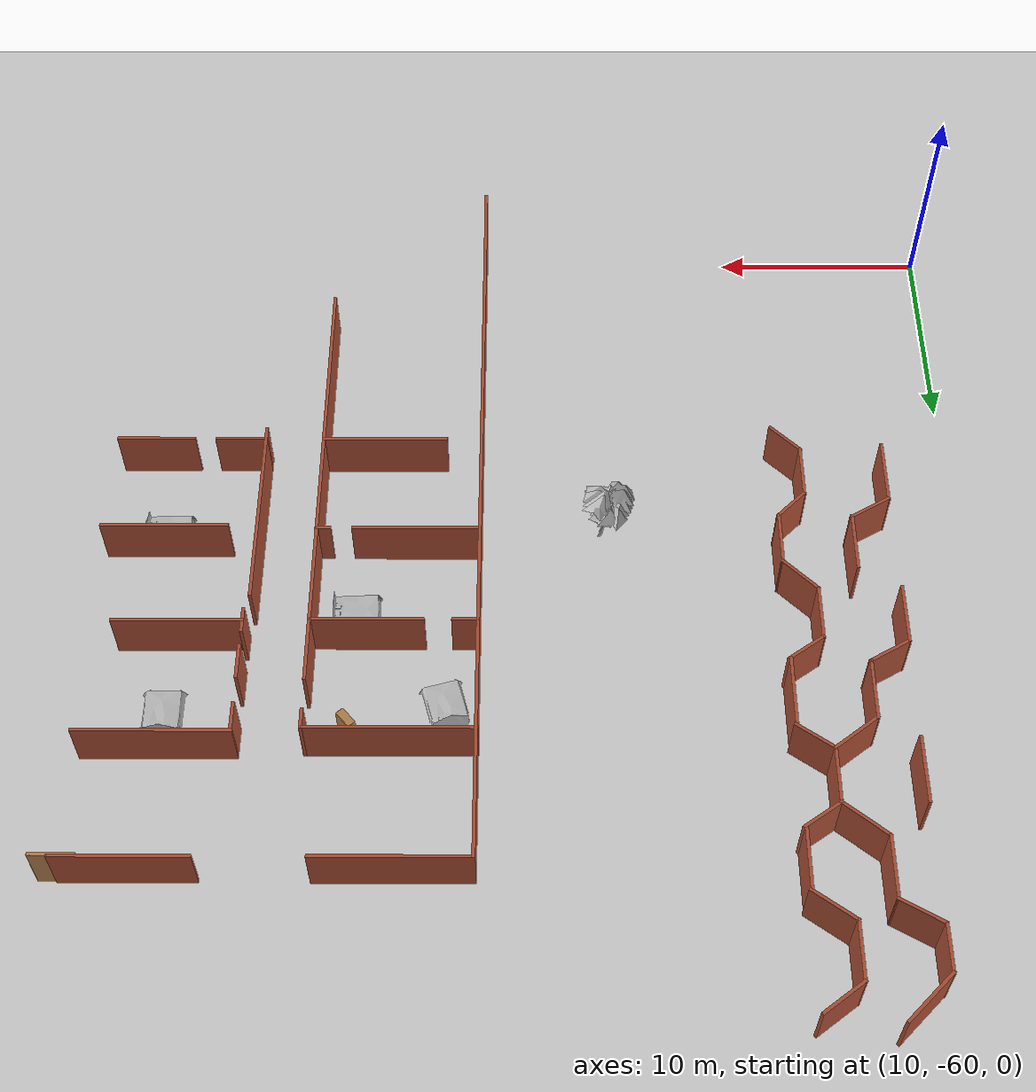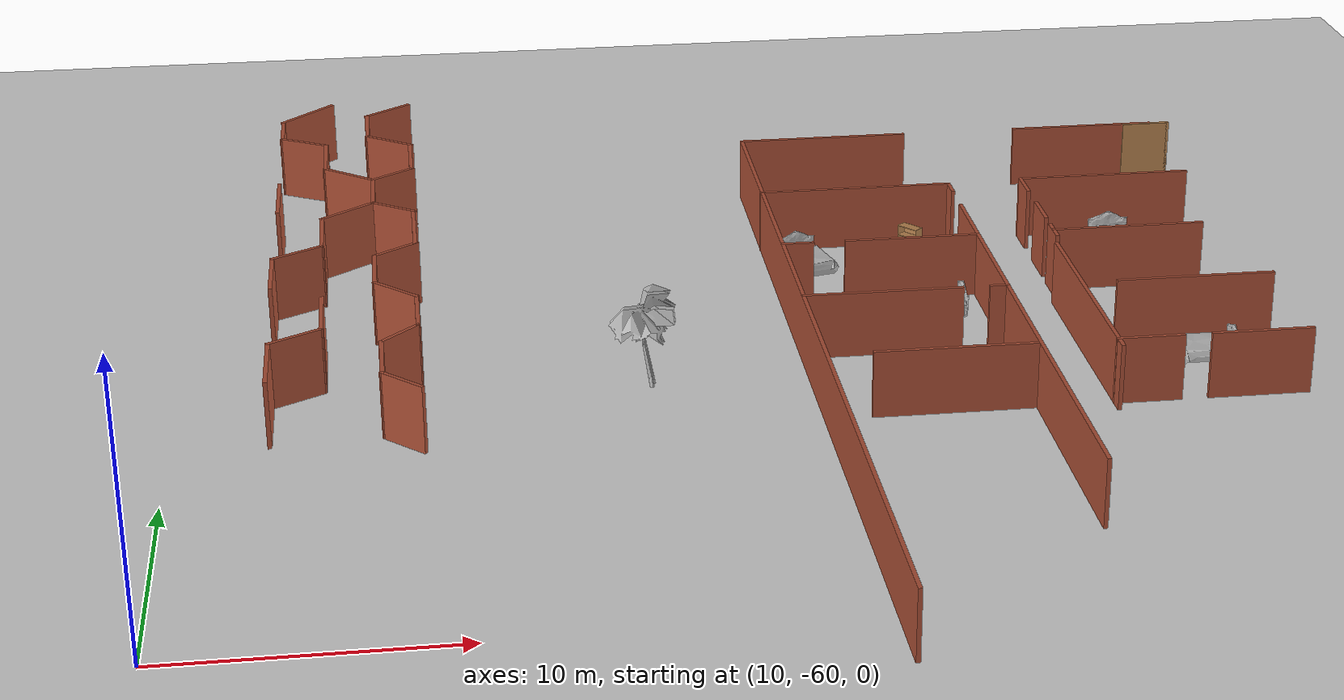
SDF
<sdf version="1.6">
 <world name="default">
  <model name="maze_rect_3">
   <pose>4e-06 -9.9e-05 0 0 -0 1.57001</pose>
   <link name="Wall_10">
    <collision name="Wall_10_Collision">
     <geometry><box><size>2.75 0.15 2.5</size></box></geometry>
     <pose>0 0 1.25 0 -0 0</pose>
    </collision>
    <visual name="Wall_10_Visual">
     <pose>0 0 1.25 0 -0 0</pose>
     <geometry><box><size>2.75 0.15 2.5</size></box></geometry>
     <material>
      <script><uri>file://media/materials/scripts/gazebo.material</uri><name>Gazebo/Bricks</name></script>
      <ambient>1 1 1 1</ambient>
     </material>
     <meta><layer>0</layer></meta>
    </visual>
    <pose>-20.3577 -17.0553 0 0 -0 3.14159</pose>
   </link>
   <link name="Wall_11">
    <collision name="Wall_11_Collision">
     <geometry><box><size>2.37821 0.15 2.5</size></box></geometry>
     <pose>0 0 1.25 0 -0 0</pose>
    </collision>
    <visual name="Wall_11_Visual">
     <pose>0 0 1.25 0 -0 0</pose>
     <geometry><box><size>2.37821 0.15 2.5</size></box></geometry>
     <material>
      <script><uri>file://media/materials/scripts/gazebo.material</uri><name>Gazebo/Bricks</name></script>
      <ambient>1 1 1 1</ambient>
     </material>
     <meta><layer>0</layer></meta>
    </visual>
    <pose>-22.3117 -17.9572 0 0 -0 -2.19825</pose>
   </link>
   <link name="Wall_12">
    <collision name="Wall_12_Collision">
     <geometry><box><size>3 0.15 2.5</size></box></geometry>
     <pose>0 0 1.25 0 -0 0</pose>
    </collision>
    <visual name="Wall_12_Visual">
     <pose>0 0 1.25 0 -0 0</pose>
     <geometry><box><size>3 0.15 2.5</size></box></geometry>
     <material>
      <script><uri>file://media/materials/scripts/gazebo.material</uri><name>Gazebo/Bricks</name></script>
      <ambient>1 1 1 1</ambient>
     </material>
     <meta><layer>0</layer></meta>
    </visual>
    <pose>-24.3908 -18.8069 0 0 -0 3.14159</pose>
   </link>
   <link name="Wall_13">
    <collision name="Wall_13_Collision">
     <geometry><box><size>2.13172 0.15 2.5</size></box></geometry>
     <pose>0 0 1.25 0 -0 0</pose>
    </collision>
    <visual name="Wall_13_Visual">
     <pose>0 0 1.25 0 -0 0</pose>
     <geometry><box><size>2.13172 0.15 2.5</size></box></geometry>
     <material>
      <script><uri>file://media/materials/scripts/gazebo.material</uri><name>Gazebo/Bricks</name></script>
      <ambient>1 1 1 1</ambient>
     </material>
     <meta><layer>0</layer></meta>
    </visual>
    <pose>-26.3815 -18.0456 0 0 -0 2.1784</pose>
   </link>
   <link name="Wall_14">
    <collision name="Wall_14_Collision">
     <geometry><box><size>2.75 0.15 2.5</size></box></geometry>
     <pose>0 0 1.25 0 -0 0</pose>
    </collision>
    <visual name="Wall_14_Visual">
     <pose>0 0 1.25 0 -0 0</pose>
     <geometry><box><size>2.75 0.15 2.5</size></box></geometry>
     <material>
      <script><uri>file://media/materials/scripts/gazebo.material</uri><name>Gazebo/Bricks</name></script>
      <ambient>1 1 1 1</ambient>
     </material>
     <meta><layer>0</layer></meta>
    </visual>
    <pose>-28.2472 -17.2321 0 0 -0 3.14159</pose>
   </link>
   <link name="Wall_15">
    <collision name="Wall_15_Collision">
     <geometry><box><size>2.11036 0.15 2.5</size></box></geometry>
     <pose>0 0 1.25 0 -0 0</pose>
    </collision>
    <visual name="Wall_15_Visual">
     <pose>0 0 1.25 0 -0 0</pose>
     <geometry><box><size>2.11036 0.15 2.5</size></box></geometry>
     <material>
      <script><uri>file://media/materials/scripts/gazebo.material</uri><name>Gazebo/Bricks</name></script>
      <ambient>1 1 1 1</ambient>
     </material>
     <meta><layer>0</layer></meta>
    </visual>
    <pose>-30.1129 -18.0325 0 0 -0 -2.186</pose>
   </link>
   <link name="Wall_16">
    <collision name="Wall_16_Collision">
     <geometry><box><size>3.5 0.15 2.5</size></box></geometry>
     <pose>0 0 1.25 0 -0 0</pose>
    </collision>
    <visual name="Wall_16_Visual">
     <pose>0 0 1.25 0 -0 0</pose>
     <geometry><box><size>3.5 0.15 2.5</size></box></geometry>
     <material>
      <script><uri>file://media/materials/scripts/gazebo.material</uri><name>Gazebo/Bricks</name></script>
      <ambient>1 1 1 1</ambient>
     </material>
     <meta><layer>0</layer></meta>
    </visual>
    <pose>-32.3535 -18.7808 0 0 -0 3.14159</pose>
   </link>
   <link name="Wall_17">
    <collision name="Wall_17_Collision">
     <geometry><box><size>2.11036 0.15 2.5</size></box></geometry>
     <pose>0 0 1.25 0 -0 0</pose>
    </collision>
    <visual name="Wall_17_Visual">
     <pose>0 0 1.25 0 -0 0</pose>
     <geometry><box><size>2.11036 0.15 2.5</size></box></geometry>
     <material>
      <script><uri>file://media/materials/scripts/gazebo.material</uri><name>Gazebo/Bricks</name></script>
      <ambient>1 1 1 1</ambient>
     </material>
     <meta><layer>0</layer></meta>
    </visual>
    <pose>-34.5942 -18.0325 0 0 -0 2.186</pose>
   </link>
   <link name="Wall_18">
    <collision name="Wall_18_Collision">
     <geometry><box><size>2.75 0.15 2.5</size></box></geometry>
     <pose>0 0 1.25 0 -0 0</pose>
    </collision>
    <visual name="Wall_18_Visual">
     <pose>0 0 1.25 0 -0 0</pose>
     <geometry><box><size>2.75 0.15 2.5</size></box></geometry>
     <material>
      <script><uri>file://media/materials/scripts/gazebo.material</uri><name>Gazebo/Bricks</name></script>
      <ambient>1 1 1 1</ambient>
     </material>
     <meta><layer>0</layer></meta>
    </visual>
    <pose>-36.4599 -17.2321 0 0 -0 3.14159</pose>
   </link>
   <link name="Wall_19">
    <collision name="Wall_19_Collision">
     <geometry><box><size>2.25 0.15 2.5</size></box></geometry>
     <pose>0 0 1.25 0 -0 0</pose>
    </collision>
    <visual name="Wall_19_Visual">
     <pose>0 0 1.25 0 -0 0</pose>
     <geometry><box><size>2.25 0.15 2.5</size></box></geometry>
     <material>
      <script><uri>file://media/materials/scripts/gazebo.material</uri><name>Gazebo/Bricks</name></script>
      <ambient>1 1 1 1</ambient>
     </material>
     <meta><layer>0</layer></meta>
    </visual>
    <pose>-38.5024 -17.9745 0 0 -0 -2.35619</pose>
   </link>
   <link name="Wall_20">
    <collision name="Wall_20_Collision">
     <geometry><box><size>2.75 0.15 2.5</size></box></geometry>
     <pose>0 0 1.25 0 -0 0</pose>
    </collision>
    <visual name="Wall_20_Visual">
     <pose>0 0 1.25 0 -0 0</pose>
     <geometry><box><size>2.75 0.15 2.5</size></box></geometry>
     <material>
      <script><uri>file://media/materials/scripts/gazebo.material</uri><name>Gazebo/Bricks</name></script>
      <ambient>1 1 1 1</ambient>
     </material>
     <meta><layer>0</layer></meta>
    </visual>
    <pose>-40.5448 -18.717 0 0 -0 3.14159</pose>
   </link>
   <link name="Wall_21">
    <collision name="Wall_21_Collision">
     <geometry><box><size>2 0.15 2.5</size></box></geometry>
     <pose>0 0 1.25 0 -0 0</pose>
    </collision>
    <visual name="Wall_21_Visual">
     <pose>0 0 1.25 0 -0 0</pose>
     <geometry><box><size>2 0.15 2.5</size></box></geometry>
     <material>
      <script><uri>file://media/materials/scripts/gazebo.material</uri><name>Gazebo/Bricks</name></script>
      <ambient>1 1 1 1</ambient>
     </material>
     <meta><layer>0</layer></meta>
    </visual>
    <pose>-42.4989 -18.0629 0 0 -0 2.35619</pose>
   </link>
   <link name="Wall_22">
    <collision name="Wall_22_Collision">
     <geometry><box><size>2.75 0.15 2.5</size></box></geometry>
     <pose>0 0 1.25 0 -0 0</pose>
    </collision>
    <visual name="Wall_22_Visual">
     <pose>0 0 1.25 0 -0 0</pose>
     <geometry><box><size>2.75 0.15 2.5</size></box></geometry>
     <material>
      <script><uri>file://media/materials/scripts/gazebo.material</uri><name>Gazebo/Bricks</name></script>
      <ambient>1 1 1 1</ambient>
     </material>
     <meta><layer>0</layer></meta>
    </visual>
    <pose>-44.453 -17.4088 0 0 -0 3.14159</pose>
   </link>
   <link name="Wall_23">
    <collision name="Wall_23_Collision">
     <geometry><box><size>2 0.15 2.5</size></box></geometry>
     <pose>0 0 1.25 0 -0 0</pose>
    </collision>
    <visual name="Wall_23_Visual">
     <pose>0 0 1.25 0 -0 0</pose>
     <geometry><box><size>2 0.15 2.5</size></box></geometry>
     <material>
      <script><uri>file://media/materials/scripts/gazebo.material</uri><name>Gazebo/Bricks</name></script>
      <ambient>1 1 1 1</ambient>
     </material>
     <meta><layer>0</layer></meta>
    </visual>
    <pose>-46.4071 -18.0629 0 0 -0 -2.35619</pose>
   </link>
   <link name="Wall_523">
    <collision name="Wall_523_Collision">
     <geometry><box><size>3 0.15 2.5</size></box></geometry>
     <pose>0 0 1.25 0 -0 0</pose>
    </collision>
    <visual name="Wall_523_Visual">
     <pose>0 0 1.25 0 -0 0</pose>
     <geometry><box><size>3 0.15 2.5</size></box></geometry>
     <material>
      <script><uri>file://media/materials/scripts/gazebo.material</uri><name>Gazebo/Bricks</name></script>
      <ambient>1 1 1 1</ambient>
     </material>
     <meta><layer>0</layer></meta>
    </visual>
    <pose>-18.4126 -14.5248 0 0 -0 2.35619</pose>
   </link>
   <link name="Wall_524">
    <collision name="Wall_524_Collision">
     <geometry><box><size>2.25 0.15 2.5</size></box></geometry>
     <pose>0 0 1.25 0 -0 0</pose>
    </collision>
    <visual name="Wall_524_Visual">
     <pose>0 0 1.25 0 -0 0</pose>
     <geometry><box><size>2.25 0.15 2.5</size></box></geometry>
     <material>
      <script><uri>file://media/materials/scripts/gazebo.material</uri><name>Gazebo/Bricks</name></script>
      <ambient>1 1 1 1</ambient>
     </material>
     <meta><layer>0</layer></meta>
    </visual>
    <pose>-20.4702 -13.5171 0 0 -0 3.14159</pose>
   </link>
   <link name="Wall_525">
    <collision name="Wall_525_Collision">
     <geometry><box><size>2.25 0.15 2.5</size></box></geometry>
     <pose>0 0 1.25 0 -0 0</pose>
    </collision>
    <visual name="Wall_525_Visual">
     <pose>0 0 1.25 0 -0 0</pose>
     <geometry><box><size>2.25 0.15 2.5</size></box></geometry>
     <material>
      <script><uri>file://media/materials/scripts/gazebo.material</uri><name>Gazebo/Bricks</name></script>
      <ambient>1 1 1 1</ambient>
     </material>
     <meta><layer>0</layer></meta>
    </visual>
    <pose>-22.0452 -14.4265 0 0 -0 -2.0944</pose>
   </link>
   <link name="Wall_526">
    <collision name="Wall_526_Collision">
     <geometry><box><size>3 0.15 2.5</size></box></geometry>
     <pose>0 0 1.25 0 -0 0</pose>
    </collision>
    <visual name="Wall_526_Visual">
     <pose>0 0 1.25 0 -0 0</pose>
     <geometry><box><size>3 0.15 2.5</size></box></geometry>
     <material>
      <script><uri>file://media/materials/scripts/gazebo.material</uri><name>Gazebo/Bricks</name></script>
      <ambient>1 1 1 1</ambient>
     </material>
     <meta><layer>0</layer></meta>
    </visual>
    <pose>-23.9952 -15.3358 0 0 -0 3.14159</pose>
   </link>
   <link name="Wall_527">
    <collision name="Wall_527_Collision">
     <geometry><box><size>2.58466 0.15 2.5</size></box></geometry>
     <pose>0 0 1.25 0 -0 0</pose>
    </collision>
    <visual name="Wall_527_Visual">
     <pose>0 0 1.25 0 -0 0</pose>
     <geometry><box><size>2.58466 0.15 2.5</size></box></geometry>
     <material>
      <script><uri>file://media/materials/scripts/gazebo.material</uri><name>Gazebo/Bricks</name></script>
      <ambient>1 1 1 1</ambient>
     </material>
     <meta><layer>0</layer></meta>
    </visual>
    <pose>-26.1837 -16.2839 0 0 -0 -2.24872</pose>
   </link>
   <link name="Wall_531">
    <collision name="Wall_531_Collision">
     <geometry><box><size>3.25 0.15 2.5</size></box></geometry>
     <pose>0 0 1.25 0 -0 0</pose>
    </collision>
    <visual name="Wall_531_Visual">
     <pose>0 0 1.25 0 -0 0</pose>
     <geometry><box><size>3.25 0.15 2.5</size></box></geometry>
     <material>
      <script><uri>file://media/materials/scripts/gazebo.material</uri><name>Gazebo/Bricks</name></script>
      <ambient>1 1 1 1</ambient>
     </material>
     <meta><layer>0</layer></meta>
    </visual>
    <pose>-28.5265 -13.521 0 0 -0 0</pose>
   </link>
   <link name="Wall_553">
    <collision name="Wall_553_Collision">
     <geometry><box><size>2.25 0.15 2.5</size></box></geometry>
     <pose>0 0 1.25 0 -0 0</pose>
    </collision>
    <visual name="Wall_553_Visual">
     <pose>0 0 1.25 0 -0 0</pose>
     <geometry><box><size>2.25 0.15 2.5</size></box></geometry>
     <material>
      <script><uri>file://media/materials/scripts/gazebo.material</uri><name>Gazebo/Bricks</name></script>
      <ambient>1 1 1 1</ambient>
     </material>
     <meta><layer>0</layer></meta>
    </visual>
    <pose>-34.4368 -14.3454 0 0 -0 -1.0472</pose>
   </link>
   <link name="Wall_554">
    <collision name="Wall_554_Collision">
     <geometry><box><size>3 0.15 2.5</size></box></geometry>
     <pose>0 0 1.25 0 -0 0</pose>
    </collision>
    <visual name="Wall_554_Visual">
     <pose>0 0 1.25 0 -0 0</pose>
     <geometry><box><size>3 0.15 2.5</size></box></geometry>
     <material>
      <script><uri>file://media/materials/scripts/gazebo.material</uri><name>Gazebo/Bricks</name></script>
      <ambient>1 1 1 1</ambient>
     </material>
     <meta><layer>0</layer></meta>
    </visual>
    <pose>-32.4868 -15.2547 0 0 -0 0</pose>
   </link>
   <link name="Wall_555">
    <collision name="Wall_555_Collision">
     <geometry><box><size>2.64082 0.15 2.5</size></box></geometry>
     <pose>0 0 1.25 0 -0 0</pose>
    </collision>
    <visual name="Wall_555_Visual">
     <pose>0 0 1.25 0 -0 0</pose>
     <geometry><box><size>2.64082 0.15 2.5</size></box></geometry>
     <material>
      <script><uri>file://media/materials/scripts/gazebo.material</uri><name>Gazebo/Bricks</name></script>
      <ambient>1 1 1 1</ambient>
     </material>
     <meta><layer>0</layer></meta>
    </visual>
    <pose>-30.3045 -16.2434 0 0 -0 -0.917144</pose>
   </link>
   <link name="Wall_566">
    <collision name="Wall_566_Collision">
     <geometry><box><size>3 0.15 2.5</size></box></geometry>
     <pose>0 0 1.25 0 -0 0</pose>
    </collision>
    <visual name="Wall_566_Visual">
     <pose>0 0 1.25 0 -0 0</pose>
     <geometry><box><size>3 0.15 2.5</size></box></geometry>
     <material>
      <script><uri>file://media/materials/scripts/gazebo.material</uri><name>Gazebo/Bricks</name></script>
      <ambient>1 1 1 1</ambient>
     </material>
     <meta><layer>0</layer></meta>
    </visual>
    <pose>-36.3868 -13.436 0 0 -0 0</pose>
   </link>
   <link name="Wall_586">
    <collision name="Wall_586_Collision">
     <geometry><box><size>3.31727 0.15 2.5</size></box></geometry>
     <pose>0 0 1.25 0 -0 0</pose>
    </collision>
    <visual name="Wall_586_Visual">
     <pose>0 0 1.25 0 -0 0</pose>
     <geometry><box><size>3.31727 0.15 2.5</size></box></geometry>
     <material>
      <script><uri>file://media/materials/scripts/gazebo.material</uri><name>Gazebo/Bricks</name></script>
      <ambient>1 1 1 1</ambient>
     </material>
     <meta><layer>0</layer></meta>
    </visual>
    <pose>-44.4117 -13.4893 0 0 -0 3.14104</pose>
   </link>
   <link name="Wall_592">
    <collision name="Wall_592_Collision">
     <geometry><box><size>3 0.15 2.5</size></box></geometry>
     <pose>0 0 1.25 0 -0 0</pose>
    </collision>
    <visual name="Wall_592_Visual">
     <pose>0 0 1.25 0 -0 0</pose>
     <geometry><box><size>3 0.15 2.5</size></box></geometry>
     <material>
      <script><uri>file://media/materials/scripts/gazebo.material</uri><name>Gazebo/Bricks</name></script>
      <ambient>1 1 1 1</ambient>
     </material>
     <meta><layer>0</layer></meta>
    </visual>
    <pose>-40.3531 -15.3088 0 0 -0 3.14159</pose>
   </link>
   <link name="Wall_593">
    <collision name="Wall_593_Collision">
     <geometry><box><size>2.25 0.15 2.5</size></box></geometry>
     <pose>0 0 1.25 0 -0 0</pose>
    </collision>
    <visual name="Wall_593_Visual">
     <pose>0 0 1.25 0 -0 0</pose>
     <geometry><box><size>2.25 0.15 2.5</size></box></geometry>
     <material>
      <script><uri>file://media/materials/scripts/gazebo.material</uri><name>Gazebo/Bricks</name></script>
      <ambient>1 1 1 1</ambient>
     </material>
     <meta><layer>0</layer></meta>
    </visual>
    <pose>-42.3031 -14.3995 0 0 -0 2.0944</pose>
   </link>
   <link name="Wall_9">
    <collision name="Wall_9_Collision">
     <geometry><box><size>2.34649 0.15 2.5</size></box></geometry>
     <pose>0 0 1.25 0 -0 0</pose>
    </collision>
    <visual name="Wall_9_Visual">
     <pose>0 0 1.25 0 -0 0</pose>
     <geometry><box><size>2.34649 0.15 2.5</size></box></geometry>
     <material>
      <script><uri>file://media/materials/scripts/gazebo.material</uri><name>Gazebo/Bricks</name></script>
      <ambient>1 1 1 1</ambient>
     </material>
     <meta><layer>0</layer></meta>
    </visual>
    <pose>-18.4011 -17.9356 0 0 -0 2.21162</pose>
   </link>
   <static>1</static>
  </model>
  <model name="map_palace_v2_model_1_0">
   <pose>-3.1e-05 -55 0 0 -0 3.14</pose>
   <link name="Wall_101">
    <collision name="Wall_101_Collision">
     <geometry><box><size>1.25 0.15 2.5</size></box></geometry>
     <pose>0 0 1.25 0 -0 0</pose>
    </collision>
    <visual name="Wall_101_Visual">
     <pose>0 0 1.25 0 -0 0</pose>
     <geometry><box><size>1.25 0.15 2.5</size></box></geometry>
     <material>
      <script><uri>file://media/materials/scripts/gazebo.material</uri><name>Gazebo/Bricks</name></script>
      <ambient>1 1 1 1</ambient>
     </material>
     <meta><layer>0</layer></meta>
    </visual>
    <pose>-43.1277 -19.0321 0 0 -0 -1.5708</pose>
   </link>
   <link name="Wall_105">
    <collision name="Wall_105_Collision">
     <geometry><box><size>1.75 0.15 2.5</size></box></geometry>
     <pose>0 0 1.25 0 -0 0</pose>
    </collision>
    <visual name="Wall_105_Visual">
     <pose>0 0 1.25 0 -0 0</pose>
     <geometry><box><size>1.75 0.15 2.5</size></box></geometry>
     <material>
      <script><uri>file://media/materials/scripts/gazebo.material</uri><name>Gazebo/Bricks</name></script>
      <ambient>1 1 1 1</ambient>
     </material>
     <meta><layer>0</layer></meta>
    </visual>
    <pose>-43.1433 -21.1751 0 0 -0 -1.5708</pose>
   </link>
   <link name="Wall_107">
    <collision name="Wall_107_Collision">
     <geometry><box><size>1.5 0.15 2.5</size></box></geometry>
     <pose>0 0 1.25 0 -0 0</pose>
    </collision>
    <visual name="Wall_107_Visual">
     <pose>0 0 1.25 0 -0 0</pose>
     <geometry><box><size>1.5 0.15 2.5</size></box></geometry>
     <material>
      <script><uri>file://media/materials/scripts/gazebo.material</uri><name>Gazebo/Bricks</name></script>
      <ambient>1 1 1 1</ambient>
     </material>
     <meta><layer>0</layer></meta>
    </visual>
    <pose>-43.1433 -24.0001 0 0 -0 -1.5708</pose>
   </link>
   <link name="Wall_108">
    <collision name="Wall_108_Collision">
     <geometry><box><size>7 0.15 2.5</size></box></geometry>
     <pose>0 0 1.25 0 -0 0</pose>
    </collision>
    <visual name="Wall_108_Visual">
     <pose>0 0 1.25 0 -0 0</pose>
     <geometry><box><size>7 0.15 2.5</size></box></geometry>
     <material>
      <script><uri>file://media/materials/scripts/gazebo.material</uri><name>Gazebo/Bricks</name></script>
      <ambient>1 1 1 1</ambient>
     </material>
     <meta><layer>0</layer></meta>
    </visual>
    <pose>-46.5683 -24.6751 0 0 -0 3.14159</pose>
   </link>
   <link name="Wall_123">
    <collision name="Wall_123_Collision">
     <geometry><box><size>2.5 0.15 2.5</size></box></geometry>
     <pose>0 0 1.25 0 -0 0</pose>
    </collision>
    <visual name="Wall_123_Visual">
     <pose>0 0 1.25 0 -0 0</pose>
     <geometry><box><size>2.5 0.15 2.5</size></box></geometry>
     <material>
      <script><uri>file://media/materials/scripts/gazebo.material</uri><name>Gazebo/Bricks</name></script>
      <ambient>1 1 1 1</ambient>
     </material>
     <meta><layer>0</layer></meta>
    </visual>
    <pose>-44.0769 -8.67053 0 0 -0 3.14159</pose>
   </link>
   <link name="Wall_125">
    <collision name="Wall_125_Collision">
     <geometry><box><size>3.75 0.15 2.5</size></box></geometry>
     <pose>0 0 1.25 0 -0 0</pose>
    </collision>
    <visual name="Wall_125_Visual">
     <pose>0 0 1.25 0 -0 0</pose>
     <geometry><box><size>3.75 0.15 2.5</size></box></geometry>
     <material>
      <script><uri>file://media/materials/scripts/gazebo.material</uri><name>Gazebo/Bricks</name></script>
      <ambient>1 1 1 1</ambient>
     </material>
     <meta><layer>0</layer></meta>
    </visual>
    <pose>-48.152 -8.67053 0 0 -0 3.14159</pose>
   </link>
   <link name="Wall_13">
    <collision name="Wall_13_Collision">
     <geometry><box><size>6 0.15 2.5</size></box></geometry>
     <pose>0 0 1.25 0 -0 0</pose>
    </collision>
    <visual name="Wall_13_Visual">
     <pose>0 0 1.25 0 -0 0</pose>
     <geometry><box><size>6 0.15 2.5</size></box></geometry>
     <material>
      <script><uri>file://media/materials/scripts/gazebo.material</uri><name>Gazebo/Bricks</name></script>
      <ambient>1 1 1 1</ambient>
     </material>
     <meta><layer>0</layer></meta>
    </visual>
    <pose>-47.1943 -30.6025 0 0 -0 0</pose>
   </link>
   <link name="Wall_141">
    <collision name="Wall_141_Collision">
     <geometry><box><size>7.75 0.15 2.5</size></box></geometry>
     <pose>0 0 1.25 0 -0 0</pose>
    </collision>
    <visual name="Wall_141_Visual">
     <pose>0 0 1.25 0 -0 0</pose>
     <geometry><box><size>7.75 0.15 2.5</size></box></geometry>
     <material>
      <script><uri>file://media/materials/scripts/gazebo.material</uri><name>Gazebo/Bricks</name></script>
      <ambient>1 1 1 1</ambient>
     </material>
     <meta><layer>0</layer></meta>
    </visual>
    <pose>-36.3384 -24.5139 0 0 -0 3.14159</pose>
   </link>
   <link name="Wall_142">
    <collision name="Wall_142_Collision">
     <geometry><box><size>1 0.15 2.5</size></box></geometry>
     <pose>0 0 1.25 0 -0 0</pose>
    </collision>
    <visual name="Wall_142_Visual">
     <pose>0 0 1.25 0 -0 0</pose>
     <geometry><box><size>1 0.15 2.5</size></box></geometry>
     <material>
      <script><uri>file://media/materials/scripts/gazebo.material</uri><name>Gazebo/Bricks</name></script>
      <ambient>1 1 1 1</ambient>
     </material>
     <meta><layer>0</layer></meta>
    </visual>
    <pose>-40.1384 -24.0889 0 0 -0 1.5708</pose>
   </link>
   <link name="Wall_144">
    <collision name="Wall_144_Collision">
     <geometry><box><size>3.25 0.15 2.5</size></box></geometry>
     <pose>0 0 1.25 0 -0 0</pose>
    </collision>
    <visual name="Wall_144_Visual">
     <pose>0 0 1.25 0 -0 0</pose>
     <geometry><box><size>3.25 0.15 2.5</size></box></geometry>
     <material>
      <script><uri>file://media/materials/scripts/gazebo.material</uri><name>Gazebo/Bricks</name></script>
      <ambient>1 1 1 1</ambient>
     </material>
     <meta><layer>0</layer></meta>
    </visual>
    <pose>-40.1384 -20.5139 0 0 -0 1.5708</pose>
   </link>
   <link name="Wall_145">
    <collision name="Wall_145_Collision">
     <geometry><box><size>5.25 0.15 2.5</size></box></geometry>
     <pose>0 0 1.25 0 -0 0</pose>
    </collision>
    <visual name="Wall_145_Visual">
     <pose>0 0 1.25 0 -0 0</pose>
     <geometry><box><size>5.25 0.15 2.5</size></box></geometry>
     <material>
      <script><uri>file://media/materials/scripts/gazebo.material</uri><name>Gazebo/Bricks</name></script>
      <ambient>1 1 1 1</ambient>
     </material>
     <meta><layer>0</layer></meta>
    </visual>
    <pose>-37.5884 -18.9639 0 0 -0 0</pose>
   </link>
   <link name="Wall_147">
    <collision name="Wall_147_Collision">
     <geometry><box><size>1.25 0.15 2.5</size></box></geometry>
     <pose>0 0 1.25 0 -0 0</pose>
    </collision>
    <visual name="Wall_147_Visual">
     <pose>0 0 1.25 0 -0 0</pose>
     <geometry><box><size>1.25 0.15 2.5</size></box></geometry>
     <material>
      <script><uri>file://media/materials/scripts/gazebo.material</uri><name>Gazebo/Bricks</name></script>
      <ambient>1 1 1 1</ambient>
     </material>
     <meta><layer>0</layer></meta>
    </visual>
    <pose>-33.1384 -18.9639 0 0 -0 0</pose>
   </link>
   <link name="Wall_149">
    <collision name="Wall_149_Collision">
     <geometry><box><size>19.5 0.15 2.5</size></box></geometry>
     <pose>0 0 1.25 0 -0 0</pose>
    </collision>
    <visual name="Wall_149_Visual">
     <pose>0 0 1.25 0 -0 0</pose>
     <geometry><box><size>19.5 0.15 2.5</size></box></geometry>
     <material>
      <script><uri>file://media/materials/scripts/gazebo.material</uri><name>Gazebo/Bricks</name></script>
      <ambient>1 1 1 1</ambient>
     </material>
     <meta><layer>0</layer></meta>
    </visual>
    <pose>-40.1384 -9.28892 0 0 -0 1.5708</pose>
   </link>
   <link name="Wall_15">
    <collision name="Wall_15_Collision">
     <geometry><box><size>7 0.15 2.5</size></box></geometry>
     <pose>0 0 1.25 0 -0 0</pose>
    </collision>
    <visual name="Wall_15_Visual">
     <pose>0 0 1.25 0 -0 0</pose>
     <geometry><box><size>7 0.15 2.5</size></box></geometry>
     <material>
      <script><uri>file://media/materials/scripts/gazebo.material</uri><name>Gazebo/Bricks</name></script>
      <ambient>1 1 1 1</ambient>
     </material>
     <meta><layer>0</layer></meta>
    </visual>
    <pose>-35.9943 -30.6025 0 0 -0 0</pose>
   </link>
   <link name="Wall_16">
    <collision name="Wall_16_Collision">
     <geometry><box><size>38.5 0.15 2.5</size></box></geometry>
     <pose>0 0 1.25 0 -0 0</pose>
    </collision>
    <visual name="Wall_16_Visual">
     <pose>0 0 1.25 0 -0 0</pose>
     <geometry><box><size>38.5 0.15 2.5</size></box></geometry>
     <material>
      <script><uri>file://media/materials/scripts/gazebo.material</uri><name>Gazebo/Bricks</name></script>
      <ambient>1 1 1 1</ambient>
     </material>
     <meta><layer>0</layer></meta>
    </visual>
    <pose>-32.5693 -11.4275 0 0 -0 1.5708</pose>
   </link>
   <link name="Wall_162">
    <collision name="Wall_162_Collision">
     <geometry><box><size>6 0.15 2.5</size></box></geometry>
     <pose>0 0 1.25 0 -0 0</pose>
    </collision>
    <visual name="Wall_162_Visual">
     <pose>0 0 1.25 0 -0 0</pose>
     <geometry><box><size>6 0.15 2.5</size></box></geometry>
     <material>
      <script><uri>file://media/materials/scripts/gazebo.material</uri><name>Gazebo/Bricks</name></script>
      <ambient>1 1 1 1</ambient>
     </material>
     <meta><layer>0</layer></meta>
    </visual>
    <pose>-47.2173 -13.8023 0 0 -0 0</pose>
   </link>
   <link name="Wall_168">
    <collision name="Wall_168_Collision">
     <geometry><box><size>6 0.15 2.5</size></box></geometry>
     <pose>0 0 1.25 0 -0 0</pose>
    </collision>
    <visual name="Wall_168_Visual">
     <pose>0 0 1.25 0 -0 0</pose>
     <geometry><box><size>6 0.15 2.5</size></box></geometry>
     <material>
      <script><uri>file://media/materials/scripts/gazebo.material</uri><name>Gazebo/Bricks</name></script>
      <ambient>1 1 1 1</ambient>
     </material>
     <meta><layer>0</layer></meta>
    </visual>
    <pose>-46.0586 -19.0371 0 0 -0 3.14159</pose>
   </link>
   <link name="Wall_173">
    <collision name="Wall_173_Collision">
     <geometry><box><size>6 0.15 2.5</size></box></geometry>
     <pose>0 0 1.25 0 -0 0</pose>
    </collision>
    <visual name="Wall_173_Visual">
     <pose>0 0 1.25 0 -0 0</pose>
     <geometry><box><size>6 0.15 2.5</size></box></geometry>
     <material>
      <script><uri>file://media/materials/scripts/gazebo.material</uri><name>Gazebo/Bricks</name></script>
      <ambient>1 1 1 1</ambient>
     </material>
     <meta><layer>0</layer></meta>
    </visual>
    <pose>-35.5177 -13.9112 0 0 -0 3.14159</pose>
   </link>
   <link name="Wall_175">
    <collision name="Wall_175_Collision">
     <geometry><box><size>0.75 0.15 2.5</size></box></geometry>
     <pose>0 0 1.25 0 -0 0</pose>
    </collision>
    <visual name="Wall_175_Visual">
     <pose>0 0 1.25 0 -0 0</pose>
     <geometry><box><size>0.75 0.15 2.5</size></box></geometry>
     <material>
      <script><uri>file://media/materials/scripts/gazebo.material</uri><name>Gazebo/Bricks</name></script>
      <ambient>1 1 1 1</ambient>
     </material>
     <meta><layer>0</layer></meta>
    </visual>
    <pose>-39.8427 -13.9112 0 0 -0 3.14159</pose>
   </link>
   <link name="Wall_177">
    <collision name="Wall_177_Collision">
     <geometry><box><size>6 0.15 2.5</size></box></geometry>
     <pose>0 0 1.25 0 -0 0</pose>
    </collision>
    <visual name="Wall_177_Visual">
     <pose>0 0 1.25 0 -0 0</pose>
     <geometry><box><size>6 0.15 2.5</size></box></geometry>
     <material>
      <script><uri>file://media/materials/scripts/gazebo.material</uri><name>Gazebo/Bricks</name></script>
      <ambient>1 1 1 1</ambient>
     </material>
     <meta><layer>0</layer></meta>
    </visual>
    <pose>-37.1927 -8.68734 0 0 -0 0</pose>
   </link>
   <link name="Wall_99">
    <collision name="Wall_99_Collision">
     <geometry><box><size>9.70374 0.15 2.5</size></box></geometry>
     <pose>0 0 1.25 0 -0 0</pose>
    </collision>
    <visual name="Wall_99_Visual">
     <pose>0 0 1.25 0 -0 0</pose>
     <geometry><box><size>9.70374 0.15 2.5</size></box></geometry>
     <material>
      <script><uri>file://media/materials/scripts/gazebo.material</uri><name>Gazebo/Bricks</name></script>
      <ambient>1 1 1 1</ambient>
     </material>
     <meta><layer>0</layer></meta>
    </visual>
    <pose>-42.9077 -12.8842 0 0 -0 -1.5708</pose>
   </link>
   <static>1</static>
  </model>
  <model name="bed2_2">
   <link name="link_1">
    <inertial>
     <mass>1</mass>
     <inertia>
      <ixx>0.166667</ixx>
      <ixy>0</ixy>
      <ixz>0</ixz>
      <iyy>0.166667</iyy>
      <iyz>0</iyz>
      <izz>0.166667</izz>
     </inertia>
    </inertial>
    <visual name="visual">
     <pose>0 0 0 1.57 -0 0</pose>
     <geometry><mesh><uri>model://bed2/bed3.obj</uri><scale>1 1 1</scale></mesh></geometry>
    </visual>
    <collision name="collision">
     <pose>0 0 0 1.57 -0 0</pose>
     <geometry><mesh><uri>model://bed2/bed3.obj</uri><scale>1 1 1</scale></mesh></geometry>
     <surface>
      <friction>
       <ode><mu>1</mu><mu2>1</mu2><fdir1>0 0 0</fdir1><slip1>0</slip1><slip2>0</slip2></ode>
       <torsional>
        <coefficient>1</coefficient>
        <patch_radius>0</patch_radius>
        <surface_radius>0</surface_radius>
        <use_patch_radius>1</use_patch_radius>
        <ode><slip>0</slip></ode>
       </torsional>
      </friction>
      <bounce><restitution_coefficient>0</restitution_coefficient><threshold>1e+06</threshold></bounce>
      <contact>
       <collide_without_contact>0</collide_without_contact>
       <collide_without_contact_bitmask>1</collide_without_contact_bitmask>
       <collide_bitmask>1</collide_bitmask>
       <ode>
        <soft_cfm>0</soft_cfm>
        <soft_erp>0.2</soft_erp>
        <kp>1e+13</kp>
        <kd>1</kd>
        <max_vel>0.01</max_vel>
        <min_depth>0</min_depth>
       </ode>
       <bullet>
        <split_impulse>1</split_impulse>
        <split_impulse_penetration_threshold>-0.01</split_impulse_penetration_threshold>
        <soft_cfm>0</soft_cfm>
        <soft_erp>0.2</soft_erp>
        <kp>1e+13</kp>
        <kd>1</kd>
       </bullet>
      </contact>
     </surface>
    </collision>
   </link>
   <static>1</static>
   <pose>33.7572 -31.8392 0 0 -0 0.258979</pose>
  </model>
  <model name="bed2_3">
   <link name="link_1">
    <inertial>
     <mass>1</mass>
     <inertia>
      <ixx>0.166667</ixx>
      <ixy>0</ixy>
      <ixz>0</ixz>
      <iyy>0.166667</iyy>
      <iyz>0</iyz>
      <izz>0.166667</izz>
     </inertia>
    </inertial>
    <visual name="visual">
     <pose>0 0 0 1.57 -0 0</pose>
     <geometry><mesh><uri>model://bed2/bed3.obj</uri><scale>1 1 1</scale></mesh></geometry>
    </visual>
    <collision name="collision">
     <pose>0 0 0 1.57 -0 0</pose>
     <geometry><mesh><uri>model://bed2/bed3.obj</uri><scale>1 1 1</scale></mesh></geometry>
     <surface>
      <friction>
       <ode><mu>1</mu><mu2>1</mu2><fdir1>0 0 0</fdir1><slip1>0</slip1><slip2>0</slip2></ode>
       <torsional>
        <coefficient>1</coefficient>
        <patch_radius>0</patch_radius>
        <surface_radius>0</surface_radius>
        <use_patch_radius>1</use_patch_radius>
        <ode><slip>0</slip></ode>
       </torsional>
      </friction>
      <bounce><restitution_coefficient>0</restitution_coefficient><threshold>1e+06</threshold></bounce>
      <contact>
       <collide_without_contact>0</collide_without_contact>
       <collide_without_contact_bitmask>1</collide_without_contact_bitmask>
       <collide_bitmask>1</collide_bitmask>
       <ode>
        <soft_cfm>0</soft_cfm>
        <soft_erp>0.2</soft_erp>
        <kp>1e+13</kp>
        <kd>1</kd>
        <max_vel>0.01</max_vel>
        <min_depth>0</min_depth>
       </ode>
       <bullet>
        <split_impulse>1</split_impulse>
        <split_impulse_penetration_threshold>-0.01</split_impulse_penetration_threshold>
        <soft_cfm>0</soft_cfm>
        <soft_erp>0.2</soft_erp>
        <kp>1e+13</kp>
        <kd>1</kd>
       </bullet>
      </contact>
     </surface>
    </collision>
   </link>
   <static>1</static>
   <pose>46.6147 -31.3971 0 0 -0 0</pose>
  </model>
  <model name="bed2_4">
   <link name="link_1">
    <inertial>
     <mass>1</mass>
     <inertia>
      <ixx>0.166667</ixx>
      <ixy>0</ixy>
      <ixz>0</ixz>
      <iyy>0.166667</iyy>
      <iyz>0</iyz>
      <izz>0.166667</izz>
     </inertia>
    </inertial>
    <visual name="visual">
     <pose>0 0 0 1.57 -0 0</pose>
     <geometry><mesh><uri>model://bed2/bed3.obj</uri><scale>1 1 1</scale></mesh></geometry>
    </visual>
    <collision name="collision">
     <pose>0 0 0 1.57 -0 0</pose>
     <geometry><mesh><uri>model://bed2/bed3.obj</uri><scale>1 1 1</scale></mesh></geometry>
     <surface>
      <friction>
       <ode><mu>1</mu><mu2>1</mu2><fdir1>0 0 0</fdir1><slip1>0</slip1><slip2>0</slip2></ode>
       <torsional>
        <coefficient>1</coefficient>
        <patch_radius>0</patch_radius>
        <surface_radius>0</surface_radius>
        <use_patch_radius>1</use_patch_radius>
        <ode><slip>0</slip></ode>
       </torsional>
      </friction>
      <bounce><restitution_coefficient>0</restitution_coefficient><threshold>1e+06</threshold></bounce>
      <contact>
       <collide_without_contact>0</collide_without_contact>
       <collide_without_contact_bitmask>1</collide_without_contact_bitmask>
       <collide_bitmask>1</collide_bitmask>
       <ode>
        <soft_cfm>0</soft_cfm>
        <soft_erp>0.2</soft_erp>
        <kp>1e+13</kp>
        <kd>1</kd>
        <max_vel>0.01</max_vel>
        <min_depth>0</min_depth>
       </ode>
       <bullet>
        <split_impulse>1</split_impulse>
        <split_impulse_penetration_threshold>-0.01</split_impulse_penetration_threshold>
        <soft_cfm>0</soft_cfm>
        <soft_erp>0.2</soft_erp>
        <kp>1e+13</kp>
        <kd>1</kd>
       </bullet>
      </contact>
     </surface>
    </collision>
   </link>
   <static>1</static>
   <pose>39.27 -37.7353 0 -0.000198 -0.008514 -1.54751</pose>
  </model>
  <model name="bed2_5">
   <link name="link_1">
    <inertial>
     <mass>1</mass>
     <inertia>
      <ixx>0.166667</ixx>
      <ixy>0</ixy>
      <ixz>0</ixz>
      <iyy>0.166667</iyy>
      <iyz>0</iyz>
      <izz>0.166667</izz>
     </inertia>
    </inertial>
    <visual name="visual">
     <pose>0 0 0 1.57 -0 0</pose>
     <geometry><mesh><uri>model://bed2/bed3.obj</uri><scale>1 1 1</scale></mesh></geometry>
    </visual>
    <collision name="collision">
     <pose>0 0 0 1.57 -0 0</pose>
     <geometry><mesh><uri>model://bed2/bed3.obj</uri><scale>1 1 1</scale></mesh></geometry>
     <surface>
      <friction>
       <ode><mu>1</mu><mu2>1</mu2><fdir1>0 0 0</fdir1><slip1>0</slip1><slip2>0</slip2></ode>
       <torsional>
        <coefficient>1</coefficient>
        <patch_radius>0</patch_radius>
        <surface_radius>0</surface_radius>
        <use_patch_radius>1</use_patch_radius>
        <ode><slip>0</slip></ode>
       </torsional>
      </friction>
      <bounce><restitution_coefficient>0</restitution_coefficient><threshold>1e+06</threshold></bounce>
      <contact>
       <collide_without_contact>0</collide_without_contact>
       <collide_without_contact_bitmask>1</collide_without_contact_bitmask>
       <collide_bitmask>1</collide_bitmask>
       <ode>
        <soft_cfm>0</soft_cfm>
        <soft_erp>0.2</soft_erp>
        <kp>1e+13</kp>
        <kd>1</kd>
        <max_vel>0.01</max_vel>
        <min_depth>0</min_depth>
       </ode>
       <bullet>
        <split_impulse>1</split_impulse>
        <split_impulse_penetration_threshold>-0.01</split_impulse_penetration_threshold>
        <soft_cfm>0</soft_cfm>
        <soft_erp>0.2</soft_erp>
        <kp>1e+13</kp>
        <kd>1</kd>
       </bullet>
      </contact>
     </surface>
    </collision>
   </link>
   <static>1</static>
   <pose>48.4353 -42.512 -0.278914 0 0 -1.56858</pose>
  </model>
  <model name="bookshelf_clone_1_clone_1_clone_2">
   <static>1</static>
   <link name="link">
    <inertial><mass>1</mass></inertial>
    <collision name="back">
     <pose>0 0.005 0.6 0 -0 0</pose>
     <geometry><box><size>0.9 0.01 1.2</size></box></geometry>
    </collision>
    <visual name="visual1">
     <pose>0 0.005 0.6 0 -0 0</pose>
     <geometry><box><size>0.9 0.01 1.2</size></box></geometry>
     <material>
      <script><uri>file://media/materials/scripts/gazebo.material</uri><name>Gazebo/Wood</name></script>
     </material>
    </visual>
    <collision name="left_side">
     <pose>0.45 -0.195 0.6 0 -0 0</pose>
     <geometry><box><size>0.02 0.4 1.2</size></box></geometry>
    </collision>
    <visual name="visual2">
     <pose>0.45 -0.195 0.6 0 -0 0</pose>
     <geometry><box><size>0.02 0.4 1.2</size></box></geometry>
     <material>
      <script><uri>file://media/materials/scripts/gazebo.material</uri><name>Gazebo/Wood</name></script>
     </material>
    </visual>
    <collision name="right_side">
     <pose>-0.45 -0.195 0.6 0 -0 0</pose>
     <geometry><box><size>0.02 0.4 1.2</size></box></geometry>
    </collision>
    <visual name="visual3">
     <pose>-0.45 -0.195 0.6 0 -0 0</pose>
     <geometry><box><size>0.02 0.4 1.2</size></box></geometry>
     <material>
      <script><uri>file://media/materials/scripts/gazebo.material</uri><name>Gazebo/Wood</name></script>
     </material>
    </visual>
    <collision name="bottom">
     <pose>0 -0.195 0.03 0 -0 0</pose>
     <geometry><box><size>0.88 0.4 0.06</size></box></geometry>
    </collision>
    <visual name="visual4">
     <pose>0 -0.195 0.03 0 -0 0</pose>
     <geometry><box><size>0.88 0.4 0.06</size></box></geometry>
     <material>
      <script><uri>file://media/materials/scripts/gazebo.material</uri><name>Gazebo/Wood</name></script>
     </material>
    </visual>
    <collision name="top">
     <pose>0 -0.195 1.19 0 -0 0</pose>
     <geometry><box><size>0.88 0.4 0.02</size></box></geometry>
    </collision>
    <visual name="visual5">
     <pose>0 -0.195 1.19 0 -0 0</pose>
     <geometry><box><size>0.88 0.4 0.02</size></box></geometry>
     <material>
      <script><uri>file://media/materials/scripts/gazebo.material</uri><name>Gazebo/Wood</name></script>
     </material>
    </visual>
    <collision name="low_shelf">
     <pose>0 -0.195 0.43 0 -0 0</pose>
     <geometry><box><size>0.88 0.4 0.02</size></box></geometry>
    </collision>
    <visual name="visual6">
     <pose>0 -0.195 0.43 0 -0 0</pose>
     <geometry><box><size>0.88 0.4 0.02</size></box></geometry>
     <material>
      <script><uri>file://media/materials/scripts/gazebo.material</uri><name>Gazebo/Wood</name></script>
     </material>
    </visual>
    <collision name="high_shelf">
     <pose>0 -0.195 0.8 0 -0 0</pose>
     <geometry><box><size>0.88 0.4 0.02</size></box></geometry>
    </collision>
    <visual name="visual7">
     <pose>0 -0.195 0.8 0 -0 0</pose>
     <geometry><box><size>0.88 0.4 0.02</size></box></geometry>
     <material>
      <script><uri>file://media/materials/scripts/gazebo.material</uri><name>Gazebo/Wood</name></script>
     </material>
    </visual>
   </link>
   <pose>38.5425 -31.6352 0 0 0 -0.862924</pose>
  </model>
  <model name="tree3_clone_32">
   <link name="link_1">
    <inertial>
     <mass>1</mass>
     <inertia>
      <ixx>0.166667</ixx>
      <ixy>0</ixy>
      <ixz>0</ixz>
      <iyy>0.166667</iyy>
      <iyz>0</iyz>
      <izz>0.166667</izz>
     </inertia>
    </inertial>
    <visual name="visual">
     <geometry><mesh><uri>model://tree3/Palmera.obj</uri><scale>1 1 1</scale></mesh></geometry>
    </visual>
    <collision name="collision">
     <geometry><mesh><uri>model://tree3/Palmera.obj</uri><scale>1 1 1</scale></mesh></geometry>
     <surface>
      <friction>
       <ode><mu>1</mu><mu2>1</mu2><fdir1>0 0 0</fdir1><slip1>0</slip1><slip2>0</slip2></ode>
       <torsional>
        <coefficient>1</coefficient>
        <patch_radius>0</patch_radius>
        <surface_radius>0</surface_radius>
        <use_patch_radius>1</use_patch_radius>
        <ode><slip>0</slip></ode>
       </torsional>
      </friction>
      <bounce><restitution_coefficient>0</restitution_coefficient><threshold>1e+06</threshold></bounce>
      <contact>
       <collide_without_contact>0</collide_without_contact>
       <collide_without_contact_bitmask>1</collide_without_contact_bitmask>
       <collide_bitmask>1</collide_bitmask>
       <ode>
        <soft_cfm>0</soft_cfm>
        <soft_erp>0.2</soft_erp>
        <kp>1e+13</kp>
        <kd>1</kd>
        <max_vel>0.01</max_vel>
        <min_depth>0</min_depth>
       </ode>
       <bullet>
        <split_impulse>1</split_impulse>
        <split_impulse_penetration_threshold>-0.01</split_impulse_penetration_threshold>
        <soft_cfm>0</soft_cfm>
        <soft_erp>0.2</soft_erp>
        <kp>1e+13</kp>
        <kd>1</kd>
       </bullet>
      </contact>
     </surface>
    </collision>
   </link>
   <static>1</static>
   <pose>26.8725 -42.7491 0 0 -0 0</pose>
  </model>
  <model name="tree3_clone_33">
   <link name="link_1">
    <inertial>
     <mass>1</mass>
     <inertia>
      <ixx>0.166667</ixx>
      <ixy>0</ixy>
      <ixz>0</ixz>
      <iyy>0.166667</iyy>
      <iyz>0</iyz>
      <izz>0.166667</izz>
     </inertia>
    </inertial>
    <visual name="visual">
     <geometry><mesh><uri>model://tree3/Palmera.obj</uri><scale>1 1 1</scale></mesh></geometry>
    </visual>
    <collision name="collision">
     <geometry><mesh><uri>model://tree3/Palmera.obj</uri><scale>1 1 1</scale></mesh></geometry>
     <surface>
      <friction>
       <ode><mu>1</mu><mu2>1</mu2><fdir1>0 0 0</fdir1><slip1>0</slip1><slip2>0</slip2></ode>
       <torsional>
        <coefficient>1</coefficient>
        <patch_radius>0</patch_radius>
        <surface_radius>0</surface_radius>
        <use_patch_radius>1</use_patch_radius>
        <ode><slip>0</slip></ode>
       </torsional>
      </friction>
      <bounce><restitution_coefficient>0</restitution_coefficient><threshold>1e+06</threshold></bounce>
      <contact>
       <collide_without_contact>0</collide_without_contact>
       <collide_without_contact_bitmask>1</collide_without_contact_bitmask>
       <collide_bitmask>1</collide_bitmask>
       <ode>
        <soft_cfm>0</soft_cfm>
        <soft_erp>0.2</soft_erp>
        <kp>1e+13</kp>
        <kd>1</kd>
        <max_vel>0.01</max_vel>
        <min_depth>0</min_depth>
       </ode>
       <bullet>
        <split_impulse>1</split_impulse>
        <split_impulse_penetration_threshold>-0.01</split_impulse_penetration_threshold>
        <soft_cfm>0</soft_cfm>
        <soft_erp>0.2</soft_erp>
        <kp>1e+13</kp>
        <kd>1</kd>
       </bullet>
      </contact>
     </surface>
    </collision>
   </link>
   <static>1</static>
   <pose>26.9368 -42.4821 0 0 -0 0</pose>
  </model>
  <model name="wall_18">
   <pose>50.0407 -24.5429 0 0 -0 0</pose>
   <link name="Wall_2">
    <collision name="Wall_2_Collision">
     <geometry><box><size>2 0.15 2.5</size></box></geometry>
     <pose>0 0 1.25 0 -0 0</pose>
    </collision>
    <visual name="Wall_2_Visual">
     <pose>0 0 1.25 0 -0 0</pose>
     <geometry><box><size>2 0.15 2.5</size></box></geometry>
     <material>
      <script><uri>file://media/materials/scripts/gazebo.material</uri><name>Gazebo/Wood</name></script>
      <ambient>1 1 1 1</ambient>
     </material>
     <meta><layer>0</layer></meta>
    </visual>
    <pose>-0.005 -0 0 0 -0 0</pose>
   </link>
   <link name="Wall_3">
    <collision name="Wall_3_Collision">
     <geometry><box><size>0.16 0.15 2.5</size></box></geometry>
     <pose>0 0 1.25 0 -0 0</pose>
    </collision>
    <visual name="Wall_3_Visual">
     <pose>0 0 1.25 0 -0 0</pose>
     <geometry><box><size>0.16 0.15 2.5</size></box></geometry>
     <material>
      <script><uri>file://media/materials/scripts/gazebo.material</uri><name>Gazebo/Wood</name></script>
      <ambient>1 1 1 1</ambient>
     </material>
     <meta><layer>0</layer></meta>
    </visual>
    <pose>0.925 0 0 0 -0 0</pose>
   </link>
   <static>1</static>
  </model>
  <model name="ground_plane">
   <static>1</static>
   <link name="link">
    <collision name="collision">
     <geometry><plane><normal>0 0 1</normal><size>100 100</size></plane></geometry>
     <surface>
      <contact><collide_bitmask>65535</collide_bitmask></contact>
      <friction><ode><mu>100</mu><mu2>50</mu2></ode></friction>
     </surface>
    </collision>
    <visual name="visual">
     <cast_shadows>0</cast_shadows>
     <geometry><plane><normal>0 0 1</normal><size>100 100</size></plane></geometry>
     <material>
      <script><uri>file://media/materials/scripts/gazebo.material</uri><name>Gazebo/Grey</name></script>
     </material>
    </visual>
   </link>
   <pose>9.31394 52.073 0 0 -0 0</pose>
  </model>
 </world>
</sdf>
